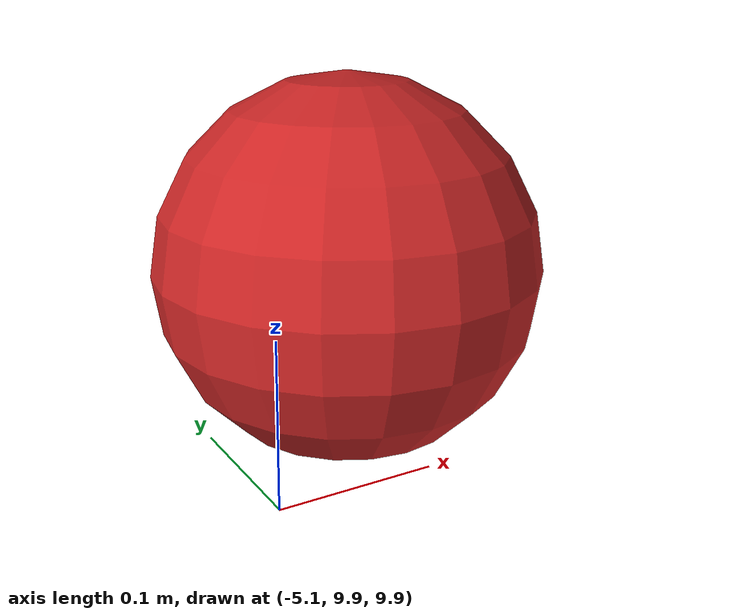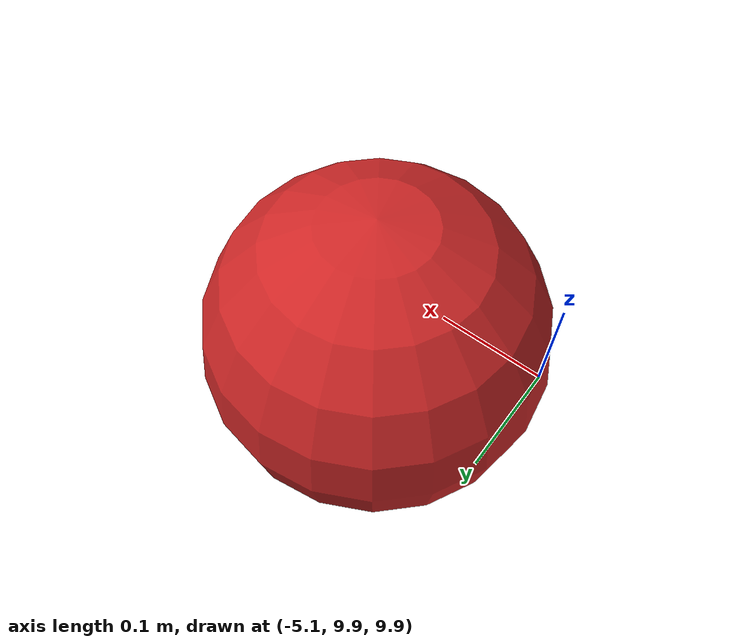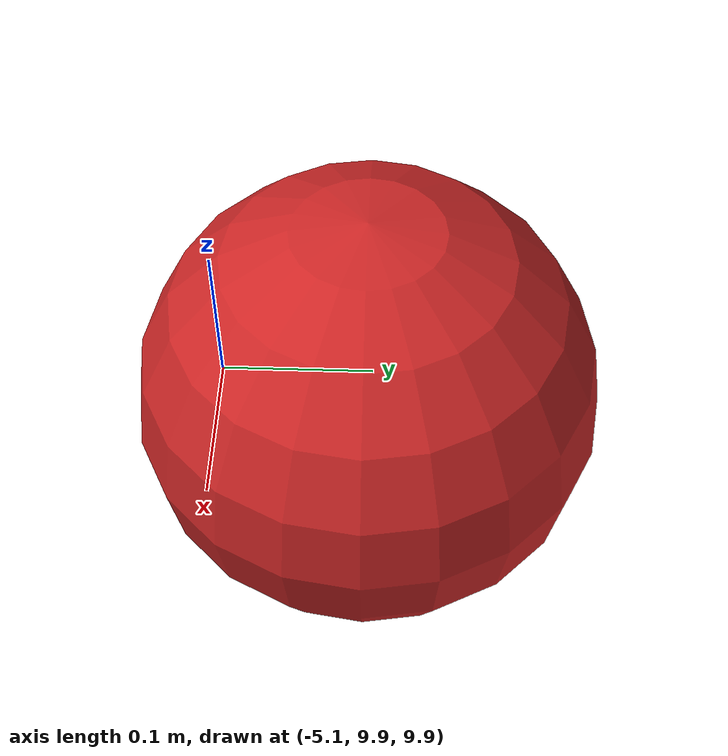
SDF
<?xml version="1.0" ?>
<sdf version="1.5">
  <world name="default">
    <scene>
        <sky>
            <sunset>20</sunset>
        </sky>
    </scene>
    <physics type='ode'>
      <max_step_size>0.01</max_step_size>
      <real_time_factor>1</real_time_factor>
      <real_time_update_rate>100</real_time_update_rate>
      <gravity>0 0 -9.8</gravity>
    </physics>
    <spherical_coordinates>
        <surface_model>EARTH_WGS84</surface_model>
        <world_frame_orientation>ENU</world_frame_orientation>
        <latitude_deg>32.776</latitude_deg>
        <longitude_deg>39.2314</longitude_deg>
        <elevation>0</elevation>
        <heading_deg>0</heading_deg>
    </spherical_coordinates>
    <!-- A global light source -->
    <include>
      <uri>model://sun</uri>
    </include>
    <!-- A ground plane -->
    <include>
      <uri>model://ground_plane</uri>
    </include>
    <model name="kickball">
      <include>
            <static>true</static>
            <uri>model://kickball</uri>
        <pose> -5 10 10 0 0 0</pose>
      </include>
    </model>
  </world>
</sdf>

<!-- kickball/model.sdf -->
<sdf version='1.6'>
<model name='kickball'>
  <link name='link'>
    <inertial>
      <mass>1</mass>
      <inertia>
        <ixx>0.1</ixx>
        <ixy>0</ixy>
        <ixz>0</ixz>
        <iyy>0.1</iyy>
        <iyz>0</iyz>
        <izz>0.1</izz>
      </inertia>
      <pose frame=''>0 0 0 0 -0 0</pose>
    </inertial>
    <collision name='collision'>
      <geometry>
        <sphere>
          <radius>0.127</radius>
        </sphere>
      </geometry>
      <max_contacts>10</max_contacts>
      <surface>
        <contact>
          <ode/>
        </contact>
        <bounce/>
        <friction>
          <torsional>
            <ode/>
          </torsional>
          <ode/>
        </friction>
      </surface>
    </collision>
    <visual name='visual'>
      <geometry>
        <sphere>
          <radius>.127</radius>
        </sphere>
      </geometry>
      <material>
        <script>
          <name>Gazebo/Red</name>
          <uri>file://media/materials/scripts/gazebo.material</uri>
        </script>
      </material>
    </visual>
    <self_collide>0</self_collide>
    <enable_wind>0</enable_wind>
    <kinematic>0</kinematic>
  </link>
</model>
</sdf>
